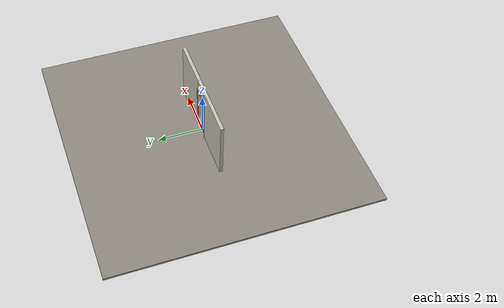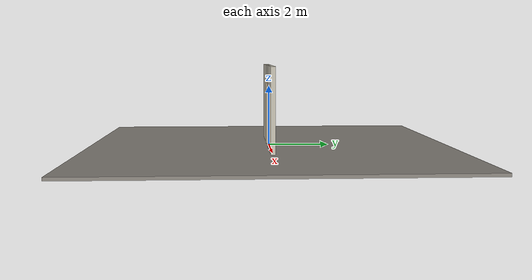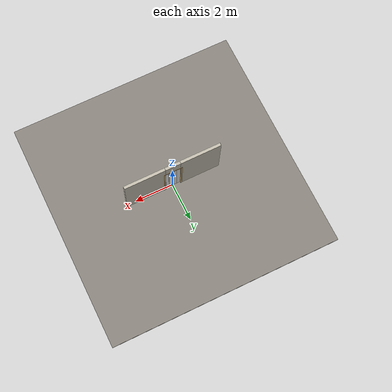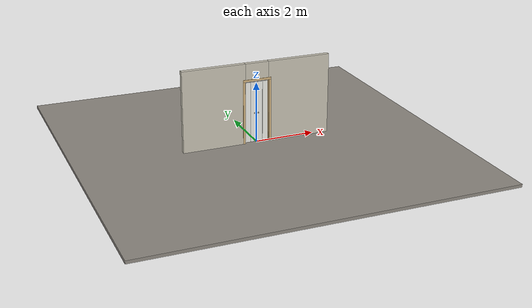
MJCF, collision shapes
<?xml version="1.0" ?>
<mujoco model="db0141_bifold_full">
  <compiler angle="radian" meshdir="../../hardware" texturedir="../../textures" autolimits="true" inertiafromgeom="false"/>
  <option timestep="0.002" integrator="implicitfast" cone="elliptic" impratio="10" noslip_iterations="3">
    <flag multiccd="enable"/>
  </option>
  <size memory="16M"/>
  <default>
    <geom condim="4" solref="0.005 1" solimp="0.95 0.99 0.001"/>
    <joint solreflimit="0.005 1" solimplimit="0.95 0.99 0.001"/>
    <tendon solreflimit="0.005 1"/>
    <equality solref="0.002 1"/>
  </default>
  <visual>
    <headlight ambient="0.4 0.4 0.4" diffuse="0.7 0.7 0.7" specular="0.2 0.2 0.2"/>
    <quality shadowsize="4096"/>
    <map znear="0.01" zfar="60"/>
  </visual>
  <asset>
    <mesh name="knob_13f7a2a65f" file="knob_13f7a2a65f.obj"/>
    <material name="mat_floor" rgba="0.55 0.53 0.5 1" specular="0.2" shininess="0.15" reflectance="0"/>
    <material name="mat_wall" rgba="0.78 0.76 0.7 1" specular="0.2" shininess="0.1" reflectance="0"/>
    <material name="mat_frame" rgba="0.82 0.7 0.5 1" specular="0.2" shininess="0.45" reflectance="0"/>
    <material name="mat_track" rgba="0.8 0.81 0.83 1" specular="0.8" shininess="0.6" reflectance="0.4"/>
    <material name="mat_hinge" rgba="0.65 0.66 0.68 1" specular="0.74" shininess="0.5" reflectance="0.36"/>
    <material name="mat_panel_0_0" rgba="0.93 0.93 0.91 1" specular="0.2" shininess="0.54" reflectance="0"/>
    <material name="mat_panel_0_1" rgba="0.93 0.93 0.91 1" specular="0.2" shininess="0.54" reflectance="0"/>
    <material name="mat_op_nickel_satin" rgba="0.72 0.7 0.66 1" specular="0.8" shininess="0.65" reflectance="0.4"/>
    <material name="mat_panel_1_0" rgba="0.93 0.93 0.91 1" specular="0.2" shininess="0.54" reflectance="0"/>
    <material name="mat_panel_1_1" rgba="0.93 0.93 0.91 1" specular="0.2" shininess="0.54" reflectance="0"/>
    <texture name="skybox" type="skybox" builtin="gradient" rgb1="0.6 0.7 0.85" rgb2="0.9 0.92 0.95" width="256" height="256"/>
  </asset>
  <worldbody>
    <light name="sun" pos="1.5 -2.5 4" dir="-0.3 0.5 -0.8" directional="true" diffuse="0.8 0.8 0.8" specular="0.3 0.3 0.3" castshadow="true"/>
    <light name="fill" pos="-1.5 2.5 3" dir="0.3 -0.5 -0.7" directional="true" diffuse="0.35 0.35 0.4" castshadow="false"/>
    <camera name="robot_view" pos="0 -2.581563 1.766338" xyaxes="1 0 0 0 0.26963 0.962964" fovy="52"/>
    <camera name="far_view" pos="0 2.581563 1.766338" xyaxes="-1 0 0 0 -0.26963 0.962964" fovy="52"/>
    <camera name="iso" pos="1.961988 -2.168513 2.179388" xyaxes="0.741536 0.670913 0 -0.242917 0.268487 0.932151" fovy="46"/>
    <camera name="detail_handle" pos="0.124028 -0.8475 1.28" xyaxes="0.97561 0.219512 0 -0.070934 0.315262 0.94635" fovy="38"/>
    <geom name="floor" type="box" size="6 6 0.05" pos="0 0 -0.05" material="mat_floor" group="0" contype="1" conaffinity="1" friction="0.8 0.005 0.0001" density="2400"/>
    <geom name="wall_left" type="box" size="1.05275 0.0725 1.35" pos="-1.44725 0 1.35" material="mat_wall" group="0" contype="1" conaffinity="1" friction="0.6 0.005 0.0001" density="800"/>
    <geom name="wall_right" type="box" size="1.05275 0.0725 1.35" pos="1.44725 0 1.35" material="mat_wall" group="0" contype="1" conaffinity="1" friction="0.6 0.005 0.0001" density="800"/>
    <geom name="wall_header" type="box" size="0.3945 0.0725 0.3065" pos="0 0 2.3935" material="mat_wall" group="0" contype="1" conaffinity="1" friction="0.6 0.005 0.0001" density="800"/>
    <geom name="jamb_hinge" type="box" size="0.0095 0.0725 1.0435" pos="-0.404 0 1.0435" material="mat_frame" group="0" contype="1" conaffinity="1" friction="0.6 0.005 0.0001" density="400"/>
    <geom name="jamb_strike" type="box" size="0.0095 0.0725 1.0435" pos="0.404 0 1.0435" material="mat_frame" group="0" contype="1" conaffinity="1" friction="0.6 0.005 0.0001" density="400"/>
    <geom name="stud_strike" type="box" size="0.015 0.0725 1.0435" pos="0.4285 0 1.0435" material="mat_wall" group="0" contype="1" conaffinity="1" friction="0.6 0.005 0.0001" density="500"/>
    <geom name="jamb_head" type="box" size="0.4285 0.0725 0.0095" pos="0.015 0 2.0965" material="mat_frame" group="0" contype="1" conaffinity="1" friction="0.6 0.005 0.0001" density="400"/>
    <geom name="head_stud" type="box" size="0.4285 0.0725 0.015" pos="0.015 0 2.121" material="mat_wall" group="0" contype="1" conaffinity="1" friction="0.6 0.005 0.0001" density="500"/>
    <geom name="casing_l_n" type="box" size="0.035 0.008 1.053" pos="-0.4435 -0.0805 1.0435" material="mat_frame" group="2" contype="0" conaffinity="0" density="400"/>
    <geom name="casing_r_n" type="box" size="0.035 0.008 1.053" pos="0.4435 -0.0805 1.0435" material="mat_frame" group="2" contype="0" conaffinity="0" density="400"/>
    <geom name="casing_h_n" type="box" size="0.4785 0.008 0.035" pos="0 -0.0805 2.136" material="mat_frame" group="2" contype="0" conaffinity="0" density="400"/>
    <geom name="casing_l_p" type="box" size="0.035 0.008 1.053" pos="-0.4435 0.0805 1.0435" material="mat_frame" group="2" contype="0" conaffinity="0" density="400"/>
    <geom name="casing_r_p" type="box" size="0.035 0.008 1.053" pos="0.4435 0.0805 1.0435" material="mat_frame" group="2" contype="0" conaffinity="0" density="400"/>
    <geom name="casing_h_p" type="box" size="0.4785 0.008 0.035" pos="0 0.0805 2.136" material="mat_frame" group="2" contype="0" conaffinity="0" density="400"/>
    <geom name="fold_track" type="box" size="0.3945 0.02 0.015" pos="0 0 2.072" material="mat_track" group="1" contype="0" conaffinity="0" density="2700"/>
    <site name="approach_point" pos="0 -1.5 0" quat="1 0 0 0" size="0.05" rgba="0.2 0.9 0.2 0.5" group="4"/>
    <site name="goal_point" pos="0 1.5 0" quat="1 0 0 0" size="0.05" rgba="0.2 0.9 0.2 0.5" group="4"/>
    <site name="door_plane_center" pos="0 0 1.0435" quat="1 0 0 0" size="0.02" rgba="0.2 0.9 0.2 0.5" group="4"/>
    <body name="panel_0_0" pos="-0.3945 0 0">
      <inertial pos="0.097608 0 1.047974" mass="2.690489" quat="0.500536 0.500536 0.499463 -0.499463" diaginertia="0.007516114 0.947492764 0.954465027"/>
      <joint name="panel_0_0_hinge" type="hinge" axis="0 0 -1" pos="0.035 0 0" limited="true" range="0 1.48353" damping="0.65791" frictionloss="0.764449" armature="0.02"/>
      <geom name="panel_0_0_slab" type="box" size="0.089645 0.0175 1.016" pos="0.098355 0 1.036" material="mat_panel_0_0" group="0" contype="1" conaffinity="1" friction="0.35 0.005 0.0001" density="1"/>
      <geom name="panel_0_0_pivot_pin" type="cylinder" size="0.008 0.0105" pos="0.035 0 2.0525" material="mat_hinge" group="1" contype="0" conaffinity="0" density="7850"/>
      <body name="panel_0_1" pos="0.19 0 0">
        <inertial pos="0.019951 0.010547 1.031456" mass="2.98553" quat="0.576187 0.408666 -0.577045 0.409901" diaginertia="0.008648208 0.880806777 0.889275504"/>
        <joint name="panel_0_1_hinge" type="hinge" axis="0 0 -1" pos="0 0.0175 0" limited="true" range="-3.141593 0" damping="0.2" frictionloss="0.1" armature="0.005"/>
        <geom name="panel_0_1_slab" type="box" size="0.098264 0.0175 1.016" pos="0.100264 0 1.036" material="mat_panel_0_1" group="0" contype="1" conaffinity="1" friction="0.35 0.005 0.0001" density="1"/>
        <geom name="panel_0_1_knuckle" type="cylinder" size="0.0045 1.006" pos="0 0.0175 1.036" material="mat_hinge" group="1" contype="0" conaffinity="0" density="7850"/>
        <geom name="panel_0_1_knob" type="mesh" mesh="knob_13f7a2a65f" pos="0.148528 -0.0175 1" quat="0.707107 0.707107 0 0" material="mat_op_nickel_satin" group="1" contype="0" conaffinity="0" density="3000"/>
        <geom name="panel_0_1_knob_col" type="sphere" size="0.016" pos="0.148528 -0.0475 1" material="mat_op_nickel_satin" group="0" contype="1" conaffinity="1" friction="0.6 0.005 0.0001" density="3000"/>
        <geom name="panel_0_1_knob_rose" type="cylinder" size="0.022 0.005" pos="0.148528 -0.0225 1" quat="0.707107 -0.707107 0 0" material="mat_op_nickel_satin" group="1" contype="0" conaffinity="0" density="3000"/>
        <site name="panel_0_1_grip" pos="0.148528 -0.0475 1" quat="1 0 0 0" size="0.012" rgba="0.2 0.9 0.2 0.5" group="4"/>
      </body>
    </body>
    <body name="panel_1_0" pos="0.3945 0 0">
      <inertial pos="-0.097608 0 1.047974" mass="2.690489" quat="0.500536 -0.500536 -0.499463 -0.499463" diaginertia="0.007516114 0.947492764 0.954465027"/>
      <joint name="panel_1_0_hinge" type="hinge" axis="0 0 1" pos="-0.035 0 0" limited="true" range="0 1.48353" damping="0.65791" frictionloss="0.764449" armature="0.02"/>
      <geom name="panel_1_0_slab" type="box" size="0.089645 0.0175 1.016" pos="-0.098355 0 1.036" material="mat_panel_1_0" group="0" contype="1" conaffinity="1" friction="0.35 0.005 0.0001" density="1"/>
      <geom name="panel_1_0_pivot_pin" type="cylinder" size="0.008 0.0105" pos="-0.035 0 2.0525" material="mat_hinge" group="1" contype="0" conaffinity="0" density="7850"/>
      <body name="panel_1_1" pos="-0.19 0 0">
        <inertial pos="-0.019951 0.010547 1.031456" mass="2.98553" quat="0.409901 0.577045 -0.408666 0.576187" diaginertia="0.008648208 0.880806777 0.889275504"/>
        <joint name="panel_1_1_hinge" type="hinge" axis="0 0 1" pos="0 0.0175 0" limited="true" range="-3.141593 0" damping="0.2" frictionloss="0.1" armature="0.005"/>
        <geom name="panel_1_1_slab" type="box" size="0.098264 0.0175 1.016" pos="-0.100264 0 1.036" material="mat_panel_1_1" group="0" contype="1" conaffinity="1" friction="0.35 0.005 0.0001" density="1"/>
        <geom name="panel_1_1_knuckle" type="cylinder" size="0.0045 1.006" pos="0 0.0175 1.036" material="mat_hinge" group="1" contype="0" conaffinity="0" density="7850"/>
        <geom name="panel_1_1_knob" type="mesh" mesh="knob_13f7a2a65f" pos="-0.148528 -0.0175 1" quat="0 0 -0.707107 0.707107" material="mat_op_nickel_satin" group="1" contype="0" conaffinity="0" density="3000"/>
        <geom name="panel_1_1_knob_col" type="sphere" size="0.016" pos="-0.148528 -0.0475 1" material="mat_op_nickel_satin" group="0" contype="1" conaffinity="1" friction="0.6 0.005 0.0001" density="3000"/>
        <geom name="panel_1_1_knob_rose" type="cylinder" size="0.022 0.005" pos="-0.148528 -0.0225 1" quat="0.707107 -0.707107 0 0" material="mat_op_nickel_satin" group="1" contype="0" conaffinity="0" density="3000"/>
        <site name="panel_1_1_grip" pos="-0.148528 -0.0475 1" quat="1 0 0 0" size="0.012" rgba="0.2 0.9 0.2 0.5" group="4"/>
      </body>
    </body>
  </worldbody>
  <equality>
    <joint name="panel_0_1_couple" joint1="panel_0_1_hinge" joint2="panel_0_0_hinge" polycoef="0 -2 0 0 0" active="true"/>
    <joint name="panel_1_1_couple" joint1="panel_1_1_hinge" joint2="panel_1_0_hinge" polycoef="0 -2 0 0 0" active="true"/>
  </equality>
  <sensor>
    <jointpos name="panel_0_0_hinge_pos" joint="panel_0_0_hinge"/>
    <jointvel name="panel_0_0_hinge_vel" joint="panel_0_0_hinge"/>
    <jointpos name="panel_0_1_hinge_pos" joint="panel_0_1_hinge"/>
    <jointvel name="panel_0_1_hinge_vel" joint="panel_0_1_hinge"/>
    <jointpos name="panel_1_0_hinge_pos" joint="panel_1_0_hinge"/>
    <jointvel name="panel_1_0_hinge_vel" joint="panel_1_0_hinge"/>
    <jointpos name="panel_1_1_hinge_pos" joint="panel_1_1_hinge"/>
    <jointvel name="panel_1_1_hinge_vel" joint="panel_1_1_hinge"/>
  </sensor>
</mujoco>
